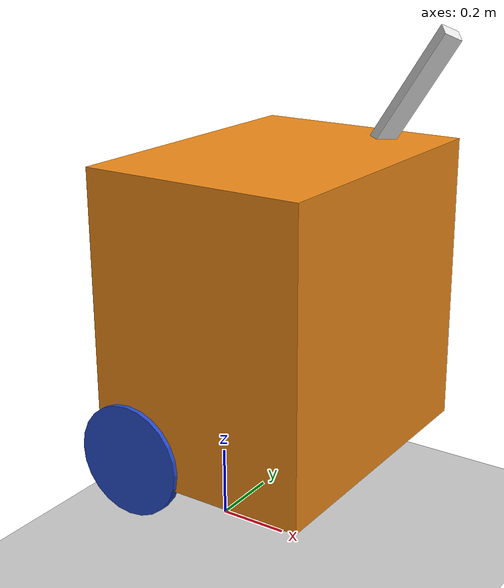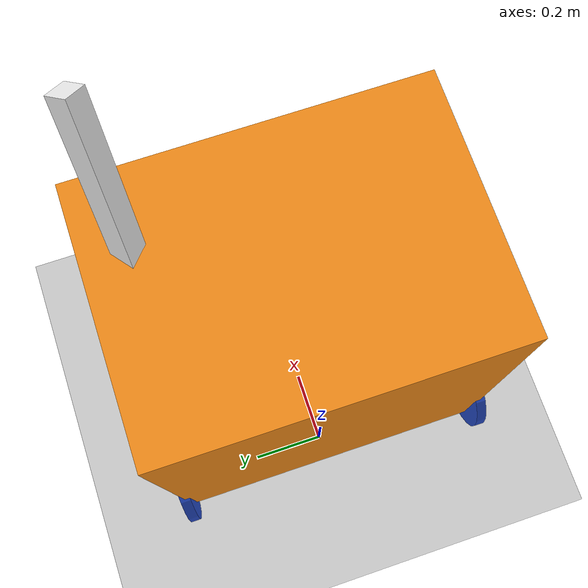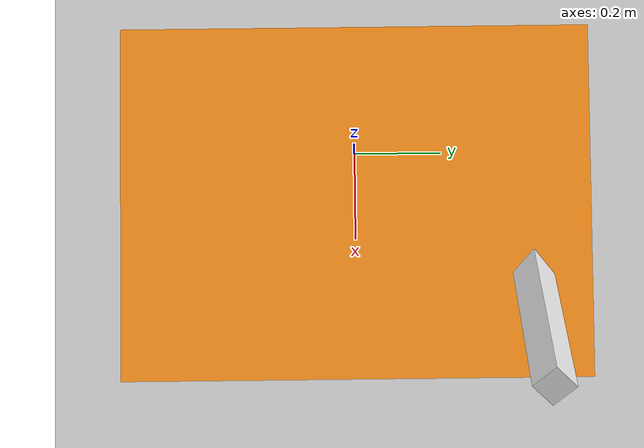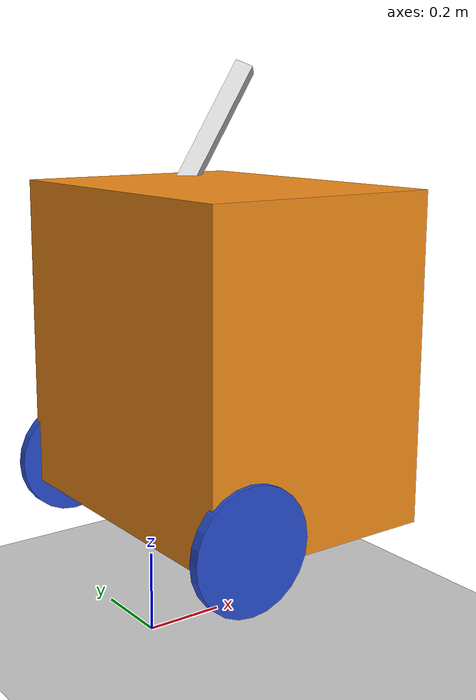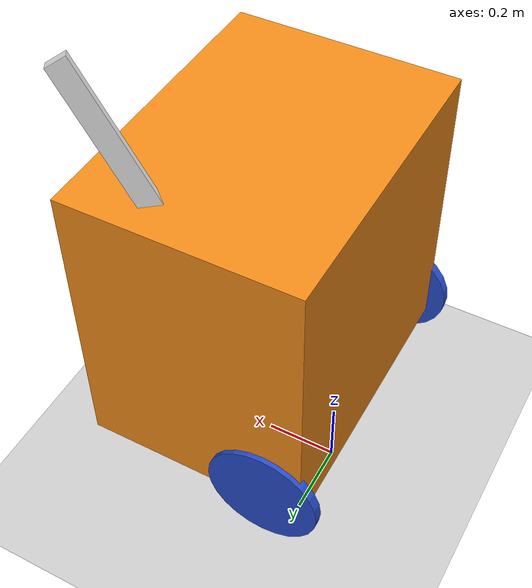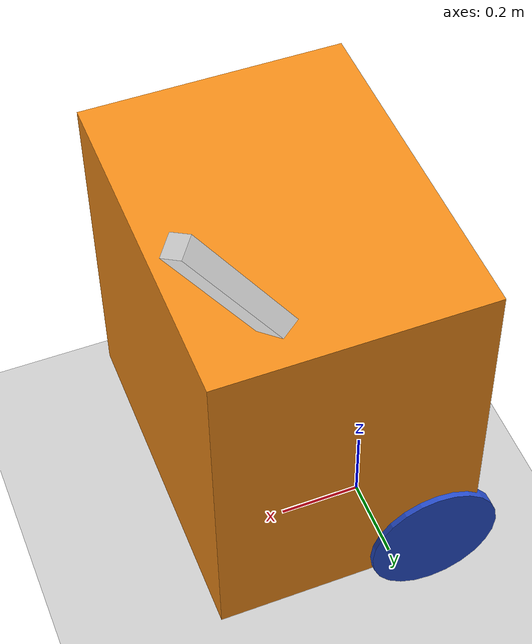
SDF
<?xml version="1.0" ?>
<sdf version="1.8">
  <world name="demo">
    <plugin
      filename="gz-sim-physics-system"
      name="gz::sim::systems::Physics">
    </plugin>
    <plugin
      filename="gz-sim-sensors-system"
      name="gz::sim::systems::Sensors">
      <render_engine>ogre2</render_engine>
    </plugin>
    <plugin
      filename="gz-sim-scene-broadcaster-system"
      name="gz::sim::systems::SceneBroadcaster">
    </plugin>
    <plugin
      filename="gz-sim-user-commands-system"
      name="gz::sim::systems::UserCommands">
    </plugin>

    <light name="sun" type="directional">
      <cast_shadows>true</cast_shadows>
      <pose>0 0 10 0 0 0</pose>
      <diffuse>0.8 0.8 0.8 1</diffuse>
      <specular>0.2 0.2 0.2 1</specular>
      <attenuation>
        <range>1000</range>
        <constant>0.9</constant>
        <linear>0.01</linear>
        <quadratic>0.001</quadratic>
      </attenuation>
      <direction>-0.5 0.1 -0.9</direction>
    </light>

    <model name="ground_plane">
      <static>true</static>
      <link name="link">
        <collision name="collision">
          <geometry>
            <plane>
              <normal>0 0 1</normal>
              <size>100 100</size>
            </plane>
          </geometry>
        </collision>
        <visual name="visual">
          <geometry>
            <plane>
              <normal>0 0 1</normal>
              <size>100 100</size>
            </plane>
          </geometry>
          <material>
            <ambient>0.8 0.8 0.8 1</ambient>
            <diffuse>0.8 0.8 0.8 1</diffuse>
            <specular>0.8 0.8 0.8 1</specular>
          </material>
        </visual>
      </link>
    </model>

    <model name="ubot">
      <self_collide>true</self_collide>
      <pose>0 0 0.35 0 0 0</pose>
      <include merge="true">
        <uri>package://ubot_description/urdf</uri>
      </include>
    </model>

  </world>
</sdf>

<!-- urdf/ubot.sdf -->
<sdf version='1.10'>
  <model name='robot'>
    <link name='base_link'>
      <inertial>
        <pose>0.20118694362017811 0.00029673590504451037 0.34655588526211678 0 0 0</pose>
        <mass>1.0109999999999999</mass>
        <inertia>
          <ixx>0.10863261936865939</ixx>
          <ixy>-5.9643916913946602e-05</ixy>
          <ixz>0.00028629979795101462</ixz>
          <iyy>0.085351782260138426</iyy>
          <iyz>-0.00015643323442136501</iyz>
          <izz>0.083576068183269431</izz>
        </inertia>
      </inertial>
      <collision name='base_link_fixed_joint_lump__chassis_collision'>
        <pose>0.20000000000000001 0 0.34999999999999998 0 0 0</pose>
        <geometry>
          <box>
            <size>0.59999999999999998 0.80000000000000004 0.80000000000000004</size>
          </box>
        </geometry>
        <surface>
          <contact>
            <ode/>
          </contact>
          <friction>
            <ode/>
          </friction>
        </surface>
      </collision>
      <collision name='base_link_fixed_joint_lump__caster_wheel_collision_1'>
        <pose>0.29999999999999999 0 -0.050000000000000003 0 0 0</pose>
        <geometry>
          <sphere>
            <radius>0.050000000000000003</radius>
          </sphere>
        </geometry>
        <surface>
          <contact>
            <ode/>
          </contact>
          <friction>
            <ode>
              <mu>0.001</mu>
              <mu2>0.001</mu2>
            </ode>
          </friction>
        </surface>
      </collision>
      <collision name='base_link_fixed_joint_lump__tail_link_collision_2'>
        <pose>0.40000000000000002 0.29999999999999999 0.86799999999999999 0.75 -1 0</pose>
        <geometry>
          <box>
            <size>0.40000000000000002 0.050000000000000003 0.050000000000000003</size>
          </box>
        </geometry>
        <surface>
          <contact>
            <ode/>
          </contact>
          <friction>
            <ode>
              <mu>0.001</mu>
              <mu2>0.001</mu2>
            </ode>
          </friction>
        </surface>
      </collision>
      <visual name='base_link_fixed_joint_lump__chassis_visual'>
        <pose>0.20000000000000001 0 0.34999999999999998 0 0 0</pose>
        <geometry>
          <box>
            <size>0.59999999999999998 0.80000000000000004 0.80000000000000004</size>
          </box>
        </geometry>
        <material>
          <script>
            <name>Gazebo/Orange</name>
            <uri>file://media/materials/scripts/gazebo.material</uri>
          </script>
          <diffuse>0.37500003 0 0.37500003 1</diffuse>
          <ambient>0.37500003 0 0.37500003 1</ambient>
        </material>
      </visual>
      <visual name='base_link_fixed_joint_lump__caster_wheel_visual_1'>
        <pose>0.29999999999999999 0 -0.050000000000000003 0 0 0</pose>
        <geometry>
          <sphere>
            <radius>0.050000000000000003</radius>
          </sphere>
        </geometry>
        <material>
          <script>
            <name>Gazebo/Black</name>
            <uri>file://media/materials/scripts/gazebo.material</uri>
          </script>
          <diffuse>0 0 0 1</diffuse>
          <ambient>0 0 0 1</ambient>
        </material>
      </visual>
      <visual name='base_link_fixed_joint_lump__tail_link_visual_2'>
        <pose>0.40000000000000002 0.29999999999999999 0.86799999999999999 0.75 -1 0</pose>
        <geometry>
          <box>
            <size>0.40000000000000002 0.050000000000000003 0.050000000000000003</size>
          </box>
        </geometry>
        <material>
          <script>
            <name>Gazebo/White</name>
            <uri>file://media/materials/scripts/gazebo.material</uri>
          </script>
          <diffuse>1 1 1 1</diffuse>
          <ambient>1 1 1 1</ambient>
        </material>
      </visual>
    </link>
    <joint name='left_wheel_joint' type='revolute'>
      <pose relative_to='base_link'>0 0.40000000000000002 0 -1.5707963267948959 0 0</pose>
      <parent>base_link</parent>
      <child>left_wheel</child>
      <axis>
        <xyz>0 0 1</xyz>
        <limit>
          <lower>-inf</lower>
          <upper>inf</upper>
        </limit>
        <dynamics>
          <spring_reference>0</spring_reference>
          <spring_stiffness>0</spring_stiffness>
        </dynamics>
      </axis>
    </joint>
    <link name='left_wheel'>
      <pose relative_to='left_wheel_joint'>0 0 0 0 0 0</pose>
      <inertial>
        <pose>0 0 0 0 0 0</pose>
        <mass>0.050000000000000003</mass>
        <inertia>
          <ixx>0.00028406666666666661</ixx>
          <ixy>0</ixy>
          <ixz>0</ixz>
          <iyy>0.00028406666666666661</iyy>
          <iyz>0</iyz>
          <izz>0.00056249999999999996</izz>
        </inertia>
      </inertial>
      <collision name='left_wheel_collision'>
        <pose>0 0 0 0 0 0</pose>
        <geometry>
          <cylinder>
            <length>0.025999999999999999</length>
            <radius>0.14999999999999999</radius>
          </cylinder>
        </geometry>
        <surface>
          <contact>
            <ode/>
          </contact>
          <friction>
            <ode/>
          </friction>
        </surface>
      </collision>
      <visual name='left_wheel_visual'>
        <pose>0 0 0 0 0 0</pose>
        <geometry>
          <cylinder>
            <length>0.025999999999999999</length>
            <radius>0.14999999999999999</radius>
          </cylinder>
        </geometry>
        <material>
          <script>
            <name>Gazebo/Blue</name>
            <uri>file://media/materials/scripts/gazebo.material</uri>
          </script>
          <diffuse>0.25 0.25 1 1</diffuse>
          <ambient>0.25 0.25 1 1</ambient>
        </material>
      </visual>
    </link>
    <joint name='right_wheel_joint' type='revolute'>
      <pose relative_to='base_link'>0 -0.40000000000000002 0 1.5707963267948959 0 0</pose>
      <parent>base_link</parent>
      <child>right_wheel</child>
      <axis>
        <xyz>0 0 -1</xyz>
        <limit>
          <lower>-inf</lower>
          <upper>inf</upper>
        </limit>
        <dynamics>
          <spring_reference>0</spring_reference>
          <spring_stiffness>0</spring_stiffness>
        </dynamics>
      </axis>
    </joint>
    <link name='right_wheel'>
      <pose relative_to='right_wheel_joint'>0 0 0 0 0 0</pose>
      <inertial>
        <pose>0 0 0 0 0 0</pose>
        <mass>0.050000000000000003</mass>
        <inertia>
          <ixx>0.00028406666666666661</ixx>
          <ixy>0</ixy>
          <ixz>0</ixz>
          <iyy>0.00028406666666666661</iyy>
          <iyz>0</iyz>
          <izz>0.00056249999999999996</izz>
        </inertia>
      </inertial>
      <collision name='right_wheel_collision'>
        <pose>0 0 0 0 0 0</pose>
        <geometry>
          <cylinder>
            <length>0.025999999999999999</length>
            <radius>0.14999999999999999</radius>
          </cylinder>
        </geometry>
        <surface>
          <contact>
            <ode/>
          </contact>
          <friction>
            <ode/>
          </friction>
        </surface>
      </collision>
      <visual name='right_wheel_visual'>
        <pose>0 0 0 0 0 0</pose>
        <geometry>
          <cylinder>
            <length>0.025999999999999999</length>
            <radius>0.14999999999999999</radius>
          </cylinder>
        </geometry>
        <material>
          <script>
            <name>Gazebo/Blue</name>
            <uri>file://media/materials/scripts/gazebo.material</uri>
          </script>
          <diffuse>0.25 0.25 1 1</diffuse>
          <ambient>0.25 0.25 1 1</ambient>
        </material>
      </visual>
    </link>
    <plugin name='gz::sim::systems::JointStatePublisher' filename='gz-sim-joint-state-publisher-system'/>
    <plugin name='gz::sim::systems::DiffDrive' filename='gz-sim-diff-drive-system'>
      <left_joint>left_wheel_joint</left_joint>
      <right_joint>right_wheel_joint</right_joint>
      <child_frame_id>robot/base_link</child_frame_id>
      <wheel_separation>0.291</wheel_separation>
      <wheel_radius>0.15</wheel_radius>
      <odom_publish_frequency>10</odom_publish_frequency>
    </plugin>
    <frame name='base_footprint_joint' attached_to='base_link'>
      <pose>0 0 -0.13800000000000001 0 0 0</pose>
    </frame>
    <frame name='base_footprint' attached_to='base_footprint_joint'>
      <pose>0 0 0 0 0 0</pose>
    </frame>
    <frame name='caster_wheel_joint' attached_to='chassis'>
      <pose>0.40000000000000002 0 0 0 0 0</pose>
    </frame>
    <frame name='caster_wheel' attached_to='caster_wheel_joint'>
      <pose>0 0 0 0 0 0</pose>
    </frame>
    <frame name='tail' attached_to='chassis'>
      <pose>0.5 0.29999999999999999 0.91800000000000004 0.75 -1 0</pose>
    </frame>
    <frame name='tail_link' attached_to='tail'>
      <pose>0 0 0 0 0 0</pose>
    </frame>
    <frame name='chassis_joint' attached_to='base_link'>
      <pose>-0.10000000000000001 0 -0.050000000000000003 0 0 0</pose>
    </frame>
    <frame name='chassis' attached_to='chassis_joint'>
      <pose>0 0 0 0 0 0</pose>
    </frame>
  </model>
</sdf>
